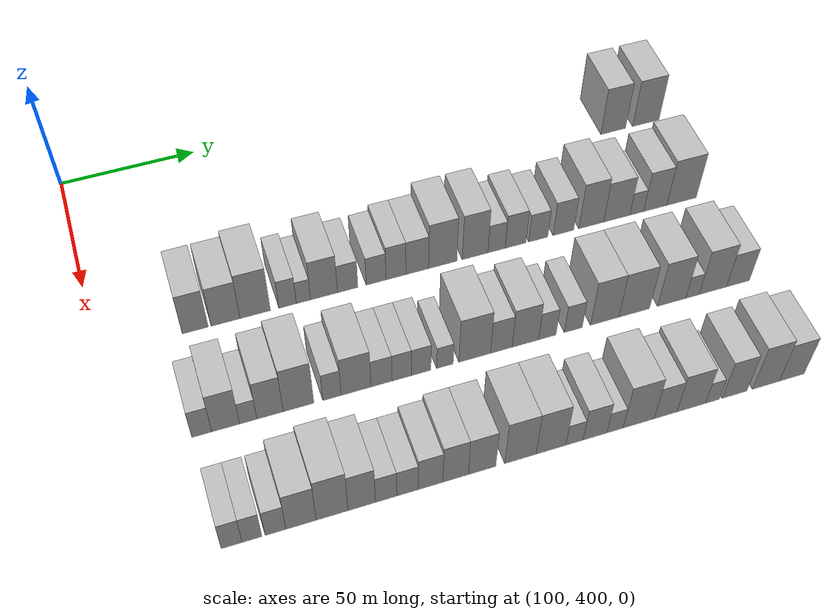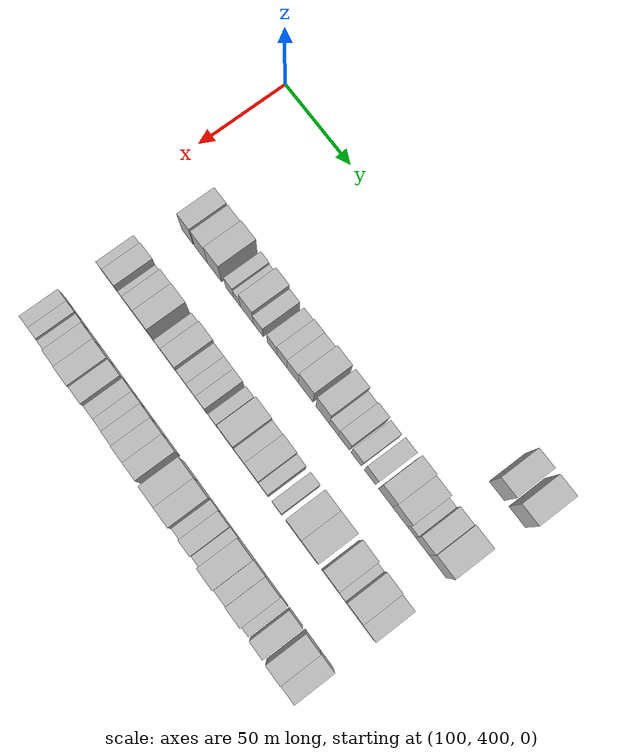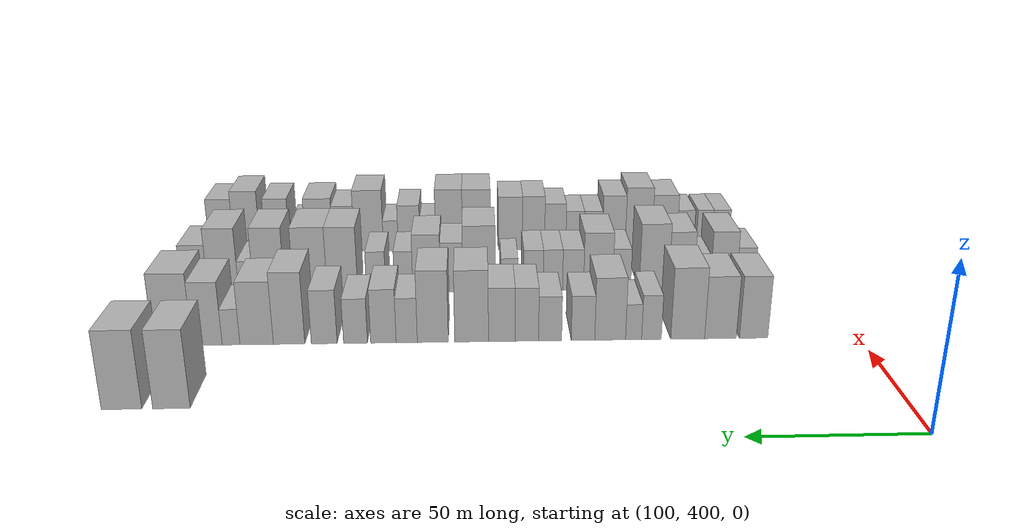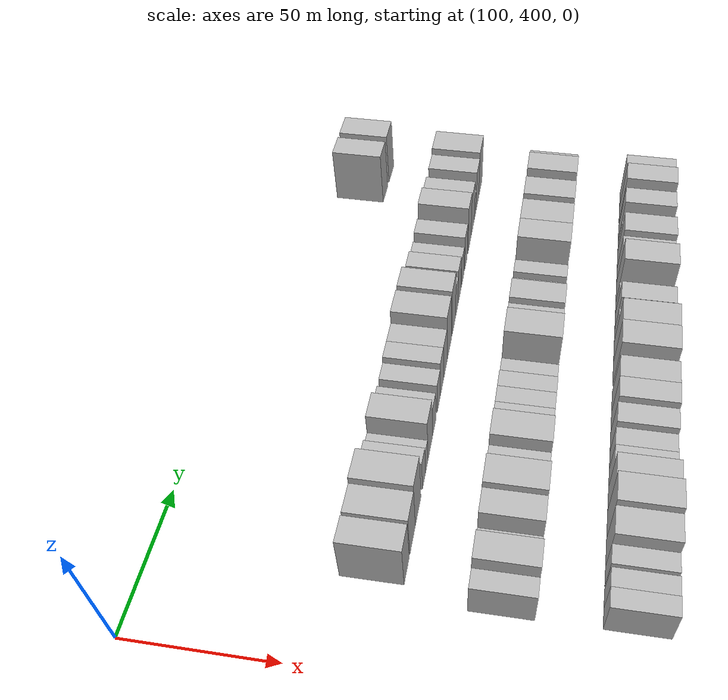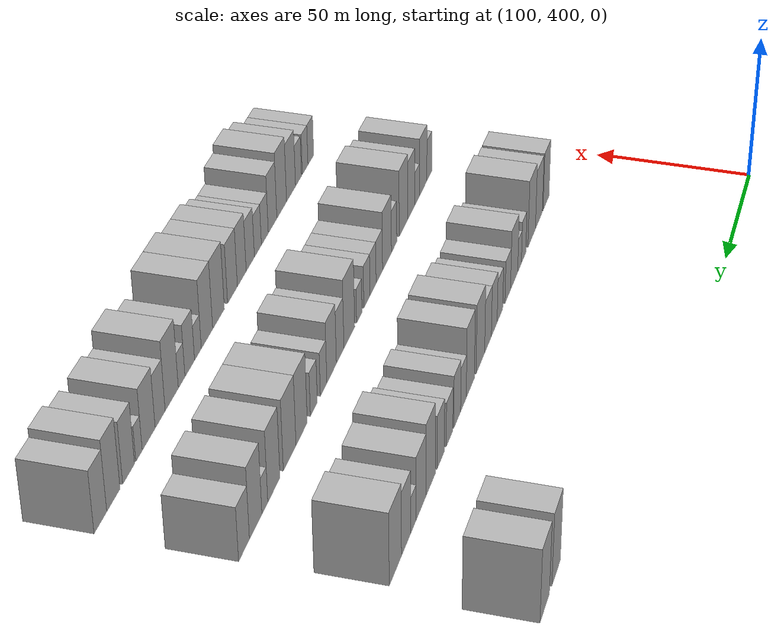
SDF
<sdf version="1.6">
 <world name="default">
  <model name="building_421">
   <static>1</static>
   <pose>130.0000 605.0881 0 0.000000 0.000000 0.000000</pose>
   <link name="link">
    <pose>0 0 12.00 0 0 0</pose>
    <collision name="collision"><geometry><box><size>20.0000 10.2831 24.0000</size></box></geometry></collision>
    <visual name="visual">
     <cast_shadows>0</cast_shadows>
     <geometry><box><size>20.0000 10.2831 24.0000</size></box></geometry>
     <material>
      <script>
       <uri>model://HANNAS_wall/materials/scripts</uri>
       <uri>model://HANNAS_wall/materials/textures</uri>
       <name>vrc/HANNAS_wall</name>
      </script>
     </material>
    </visual>
   </link>
  </model>
  <model name="building_422">
   <static>1</static>
   <pose>130.0000 618.7849 0 0.000000 0.000000 0.000000</pose>
   <link name="link">
    <pose>0 0 12.00 0 0 0</pose>
    <collision name="collision"><geometry><box><size>20.0000 11.1104 24.0000</size></box></geometry></collision>
    <visual name="visual">
     <cast_shadows>0</cast_shadows>
     <geometry><box><size>20.0000 11.1104 24.0000</size></box></geometry>
     <material>
      <script>
       <uri>model://HANNAS_wall/materials/scripts</uri>
       <uri>model://HANNAS_wall/materials/textures</uri>
       <name>vrc/HANNAS_wall</name>
      </script>
     </material>
    </visual>
   </link>
  </model>
  <model name="building_532">
   <static>1</static>
   <pose>170.0000 433.3352 0 0.000000 0.000000 0.000000</pose>
   <link name="link">
    <pose>0 0 10.50 0 0 0</pose>
    <collision name="collision"><geometry><box><size>20.0000 8.9717 21.0000</size></box></geometry></collision>
    <visual name="visual">
     <cast_shadows>0</cast_shadows>
     <geometry><box><size>20.0000 8.9717 21.0000</size></box></geometry>
     <material>
      <script>
       <uri>model://HANNAS_wall/materials/scripts</uri>
       <uri>model://HANNAS_wall/materials/textures</uri>
       <name>vrc/HANNAS_wall</name>
      </script>
     </material>
    </visual>
   </link>
  </model>
  <model name="building_533">
   <static>1</static>
   <pose>170.0000 443.8357 0 0.000000 0.000000 0.000000</pose>
   <link name="link">
    <pose>0 0 10.50 0 0 0</pose>
    <collision name="collision"><geometry><box><size>20.0000 10.0292 21.0000</size></box></geometry></collision>
    <visual name="visual">
     <cast_shadows>0</cast_shadows>
     <geometry><box><size>20.0000 10.0292 21.0000</size></box></geometry>
     <material>
      <script>
       <uri>model://HANNAS_wall/materials/scripts</uri>
       <uri>model://HANNAS_wall/materials/textures</uri>
       <name>vrc/HANNAS_wall</name>
      </script>
     </material>
    </visual>
   </link>
  </model>
  <model name="building_534">
   <static>1</static>
   <pose>170.0000 454.1911 0 0.000000 0.000000 0.000000</pose>
   <link name="link">
    <pose>0 0 12.00 0 0 0</pose>
    <collision name="collision"><geometry><box><size>20.0000 10.6815 24.0000</size></box></geometry></collision>
    <visual name="visual">
     <cast_shadows>0</cast_shadows>
     <geometry><box><size>20.0000 10.6815 24.0000</size></box></geometry>
     <material>
      <script>
       <uri>model://HANNAS_wall/materials/scripts</uri>
       <uri>model://HANNAS_wall/materials/textures</uri>
       <name>vrc/HANNAS_wall</name>
      </script>
     </material>
    </visual>
   </link>
  </model>
  <model name="building_535">
   <static>1</static>
   <pose>170.0000 465.6316 0 0.000000 0.000000 0.000000</pose>
   <link name="link">
    <pose>0 0 7.50 0 0 0</pose>
    <collision name="collision"><geometry><box><size>20.0000 6.1996 15.0000</size></box></geometry></collision>
    <visual name="visual">
     <cast_shadows>0</cast_shadows>
     <geometry><box><size>20.0000 6.1996 15.0000</size></box></geometry>
     <material>
      <script>
       <uri>model://HANNAS_wall/materials/scripts</uri>
       <uri>model://HANNAS_wall/materials/textures</uri>
       <name>vrc/HANNAS_wall</name>
      </script>
     </material>
    </visual>
   </link>
  </model>
  <model name="building_536">
   <static>1</static>
   <pose>170.0000 471.2588 0 0.000000 0.000000 0.000000</pose>
   <link name="link">
    <pose>0 0 6.00 0 0 0</pose>
    <collision name="collision"><geometry><box><size>20.0000 5.0548 12.0000</size></box></geometry></collision>
    <visual name="visual">
     <cast_shadows>0</cast_shadows>
     <geometry><box><size>20.0000 5.0548 12.0000</size></box></geometry>
     <material>
      <script>
       <uri>model://HANNAS_wall/materials/scripts</uri>
       <uri>model://HANNAS_wall/materials/textures</uri>
       <name>vrc/HANNAS_wall</name>
      </script>
     </material>
    </visual>
   </link>
  </model>
  <model name="building_537">
   <static>1</static>
   <pose>170.0000 478.6323 0 0.000000 0.000000 0.000000</pose>
   <link name="link">
    <pose>0 0 10.50 0 0 0</pose>
    <collision name="collision"><geometry><box><size>20.0000 9.6921 21.0000</size></box></geometry></collision>
    <visual name="visual">
     <cast_shadows>0</cast_shadows>
     <geometry><box><size>20.0000 9.6921 21.0000</size></box></geometry>
     <material>
      <script>
       <uri>model://HANNAS_wall/materials/scripts</uri>
       <uri>model://HANNAS_wall/materials/textures</uri>
       <name>vrc/HANNAS_wall</name>
      </script>
     </material>
    </visual>
   </link>
  </model>
  <model name="building_538">
   <static>1</static>
   <pose>170.0000 487.1583 0 0.000000 0.000000 0.000000</pose>
   <link name="link">
    <pose>0 0 7.50 0 0 0</pose>
    <collision name="collision"><geometry><box><size>20.0000 7.3598 15.0000</size></box></geometry></collision>
    <visual name="visual">
     <cast_shadows>0</cast_shadows>
     <geometry><box><size>20.0000 7.3598 15.0000</size></box></geometry>
     <material>
      <script>
       <uri>model://HANNAS_wall/materials/scripts</uri>
       <uri>model://HANNAS_wall/materials/textures</uri>
       <name>vrc/HANNAS_wall</name>
      </script>
     </material>
    </visual>
   </link>
  </model>
  <model name="building_539">
   <static>1</static>
   <pose>170.0000 497.4530 0 0.000000 0.000000 0.000000</pose>
   <link name="link">
    <pose>0 0 7.50 0 0 0</pose>
    <collision name="collision"><geometry><box><size>20.0000 7.2296 15.0000</size></box></geometry></collision>
    <visual name="visual">
     <cast_shadows>0</cast_shadows>
     <geometry><box><size>20.0000 7.2296 15.0000</size></box></geometry>
     <material>
      <script>
       <uri>model://HANNAS_wall/materials/scripts</uri>
       <uri>model://HANNAS_wall/materials/textures</uri>
       <name>vrc/HANNAS_wall</name>
      </script>
     </material>
    </visual>
   </link>
  </model>
  <model name="building_540">
   <static>1</static>
   <pose>170.0000 504.7379 0 0.000000 0.000000 0.000000</pose>
   <link name="link">
    <pose>0 0 9.00 0 0 0</pose>
    <collision name="collision"><geometry><box><size>20.0000 7.3401 18.0000</size></box></geometry></collision>
    <visual name="visual">
     <cast_shadows>0</cast_shadows>
     <geometry><box><size>20.0000 7.3401 18.0000</size></box></geometry>
     <material>
      <script>
       <uri>model://HANNAS_wall/materials/scripts</uri>
       <uri>model://HANNAS_wall/materials/textures</uri>
       <name>vrc/HANNAS_wall</name>
      </script>
     </material>
    </visual>
   </link>
  </model>
  <model name="building_541">
   <static>1</static>
   <pose>170.0000 512.5933 0 0.000000 0.000000 0.000000</pose>
   <link name="link">
    <pose>0 0 9.00 0 0 0</pose>
    <collision name="collision"><geometry><box><size>20.0000 8.3707 18.0000</size></box></geometry></collision>
    <visual name="visual">
     <cast_shadows>0</cast_shadows>
     <geometry><box><size>20.0000 8.3707 18.0000</size></box></geometry>
     <material>
      <script>
       <uri>model://HANNAS_wall/materials/scripts</uri>
       <uri>model://HANNAS_wall/materials/textures</uri>
       <name>vrc/HANNAS_wall</name>
      </script>
     </material>
    </visual>
   </link>
  </model>
  <model name="building_542">
   <static>1</static>
   <pose>170.0000 522.0452 0 0.000000 0.000000 0.000000</pose>
   <link name="link">
    <pose>0 0 12.00 0 0 0</pose>
    <collision name="collision"><geometry><box><size>20.0000 10.5331 24.0000</size></box></geometry></collision>
    <visual name="visual">
     <cast_shadows>0</cast_shadows>
     <geometry><box><size>20.0000 10.5331 24.0000</size></box></geometry>
     <material>
      <script>
       <uri>model://HANNAS_wall/materials/scripts</uri>
       <uri>model://HANNAS_wall/materials/textures</uri>
       <name>vrc/HANNAS_wall</name>
      </script>
     </material>
    </visual>
   </link>
  </model>
  <model name="building_543">
   <static>1</static>
   <pose>170.0000 534.1423 0 0.000000 0.000000 0.000000</pose>
   <link name="link">
    <pose>0 0 12.00 0 0 0</pose>
    <collision name="collision"><geometry><box><size>20.0000 9.6612 24.0000</size></box></geometry></collision>
    <visual name="visual">
     <cast_shadows>0</cast_shadows>
     <geometry><box><size>20.0000 9.6612 24.0000</size></box></geometry>
     <material>
      <script>
       <uri>model://HANNAS_wall/materials/scripts</uri>
       <uri>model://HANNAS_wall/materials/textures</uri>
       <name>vrc/HANNAS_wall</name>
      </script>
     </material>
    </visual>
   </link>
  </model>
  <model name="building_544">
   <static>1</static>
   <pose>170.0000 542.2702 0 0.000000 0.000000 0.000000</pose>
   <link name="link">
    <pose>0 0 7.50 0 0 0</pose>
    <collision name="collision"><geometry><box><size>20.0000 6.5946 15.0000</size></box></geometry></collision>
    <visual name="visual">
     <cast_shadows>0</cast_shadows>
     <geometry><box><size>20.0000 6.5946 15.0000</size></box></geometry>
     <material>
      <script>
       <uri>model://HANNAS_wall/materials/scripts</uri>
       <uri>model://HANNAS_wall/materials/textures</uri>
       <name>vrc/HANNAS_wall</name>
      </script>
     </material>
    </visual>
   </link>
  </model>
  <model name="building_545">
   <static>1</static>
   <pose>170.0000 549.5202 0 0.000000 0.000000 0.000000</pose>
   <link name="link">
    <pose>0 0 9.00 0 0 0</pose>
    <collision name="collision"><geometry><box><size>20.0000 7.9053 18.0000</size></box></geometry></collision>
    <visual name="visual">
     <cast_shadows>0</cast_shadows>
     <geometry><box><size>20.0000 7.9053 18.0000</size></box></geometry>
     <material>
      <script>
       <uri>model://HANNAS_wall/materials/scripts</uri>
       <uri>model://HANNAS_wall/materials/textures</uri>
       <name>vrc/HANNAS_wall</name>
      </script>
     </material>
    </visual>
   </link>
  </model>
  <model name="building_546">
   <static>1</static>
   <pose>170.0000 558.1807 0 0.000000 0.000000 0.000000</pose>
   <link name="link">
    <pose>0 0 7.50 0 0 0</pose>
    <collision name="collision"><geometry><box><size>20.0000 7.4158 15.0000</size></box></geometry></collision>
    <visual name="visual">
     <cast_shadows>0</cast_shadows>
     <geometry><box><size>20.0000 7.4158 15.0000</size></box></geometry>
     <material>
      <script>
       <uri>model://HANNAS_wall/materials/scripts</uri>
       <uri>model://HANNAS_wall/materials/textures</uri>
       <name>vrc/HANNAS_wall</name>
      </script>
     </material>
    </visual>
   </link>
  </model>
  <model name="building_547">
   <static>1</static>
   <pose>170.0000 567.8969 0 0.000000 0.000000 0.000000</pose>
   <link name="link">
    <pose>0 0 9.00 0 0 0</pose>
    <collision name="collision"><geometry><box><size>20.0000 8.0165 18.0000</size></box></geometry></collision>
    <visual name="visual">
     <cast_shadows>0</cast_shadows>
     <geometry><box><size>20.0000 8.0165 18.0000</size></box></geometry>
     <material>
      <script>
       <uri>model://HANNAS_wall/materials/scripts</uri>
       <uri>model://HANNAS_wall/materials/textures</uri>
       <name>vrc/HANNAS_wall</name>
      </script>
     </material>
    </visual>
   </link>
  </model>
  <model name="building_548">
   <static>1</static>
   <pose>170.0000 578.7723 0 0.000000 0.000000 0.000000</pose>
   <link name="link">
    <pose>0 0 12.00 0 0 0</pose>
    <collision name="collision"><geometry><box><size>20.0000 9.7342 24.0000</size></box></geometry></collision>
    <visual name="visual">
     <cast_shadows>0</cast_shadows>
     <geometry><box><size>20.0000 9.7342 24.0000</size></box></geometry>
     <material>
      <script>
       <uri>model://HANNAS_wall/materials/scripts</uri>
       <uri>model://HANNAS_wall/materials/textures</uri>
       <name>vrc/HANNAS_wall</name>
      </script>
     </material>
    </visual>
   </link>
  </model>
  <model name="building_549">
   <static>1</static>
   <pose>170.0000 588.8081 0 0.000000 0.000000 0.000000</pose>
   <link name="link">
    <pose>0 0 10.50 0 0 0</pose>
    <collision name="collision"><geometry><box><size>20.0000 10.3373 21.0000</size></box></geometry></collision>
    <visual name="visual">
     <cast_shadows>0</cast_shadows>
     <geometry><box><size>20.0000 10.3373 21.0000</size></box></geometry>
     <material>
      <script>
       <uri>model://HANNAS_wall/materials/scripts</uri>
       <uri>model://HANNAS_wall/materials/textures</uri>
       <name>vrc/HANNAS_wall</name>
      </script>
     </material>
    </visual>
   </link>
  </model>
  <model name="building_550">
   <static>1</static>
   <pose>170.0000 596.7109 0 0.000000 0.000000 0.000000</pose>
   <link name="link">
    <pose>0 0 6.00 0 0 0</pose>
    <collision name="collision"><geometry><box><size>20.0000 5.4684 12.0000</size></box></geometry></collision>
    <visual name="visual">
     <cast_shadows>0</cast_shadows>
     <geometry><box><size>20.0000 5.4684 12.0000</size></box></geometry>
     <material>
      <script>
       <uri>model://HANNAS_wall/materials/scripts</uri>
       <uri>model://HANNAS_wall/materials/textures</uri>
       <name>vrc/HANNAS_wall</name>
      </script>
     </material>
    </visual>
   </link>
  </model>
  <model name="building_551">
   <static>1</static>
   <pose>170.0000 604.0701 0 0.000000 0.000000 0.000000</pose>
   <link name="link">
    <pose>0 0 10.50 0 0 0</pose>
    <collision name="collision"><geometry><box><size>20.0000 9.2498 21.0000</size></box></geometry></collision>
    <visual name="visual">
     <cast_shadows>0</cast_shadows>
     <geometry><box><size>20.0000 9.2498 21.0000</size></box></geometry>
     <material>
      <script>
       <uri>model://HANNAS_wall/materials/scripts</uri>
       <uri>model://HANNAS_wall/materials/textures</uri>
       <name>vrc/HANNAS_wall</name>
      </script>
     </material>
    </visual>
   </link>
  </model>
  <model name="building_552">
   <static>1</static>
   <pose>170.0000 614.6300 0 0.000000 0.000000 0.000000</pose>
   <link name="link">
    <pose>0 0 12.00 0 0 0</pose>
    <collision name="collision"><geometry><box><size>20.0000 11.8701 24.0000</size></box></geometry></collision>
    <visual name="visual">
     <cast_shadows>0</cast_shadows>
     <geometry><box><size>20.0000 11.8701 24.0000</size></box></geometry>
     <material>
      <script>
       <uri>model://HANNAS_wall/materials/scripts</uri>
       <uri>model://HANNAS_wall/materials/textures</uri>
       <name>vrc/HANNAS_wall</name>
      </script>
     </material>
    </visual>
   </link>
  </model>
  <model name="building_666">
   <static>1</static>
   <pose>210.0000 426.7360 0 0.000000 0.000000 0.000000</pose>
   <link name="link">
    <pose>0 0 7.50 0 0 0</pose>
    <collision name="collision"><geometry><box><size>20.0000 6.4606 15.0000</size></box></geometry></collision>
    <visual name="visual">
     <cast_shadows>0</cast_shadows>
     <geometry><box><size>20.0000 6.4606 15.0000</size></box></geometry>
     <material>
      <script>
       <uri>model://HANNAS_wall/materials/scripts</uri>
       <uri>model://HANNAS_wall/materials/textures</uri>
       <name>vrc/HANNAS_wall</name>
      </script>
     </material>
    </visual>
   </link>
  </model>
  <model name="building_667">
   <static>1</static>
   <pose>210.0000 434.5325 0 0.000000 0.000000 0.000000</pose>
   <link name="link">
    <pose>0 0 10.50 0 0 0</pose>
    <collision name="collision"><geometry><box><size>20.0000 9.1324 21.0000</size></box></geometry></collision>
    <visual name="visual">
     <cast_shadows>0</cast_shadows>
     <geometry><box><size>20.0000 9.1324 21.0000</size></box></geometry>
     <material>
      <script>
       <uri>model://HANNAS_wall/materials/scripts</uri>
       <uri>model://HANNAS_wall/materials/textures</uri>
       <name>vrc/HANNAS_wall</name>
      </script>
     </material>
    </visual>
   </link>
  </model>
  <model name="building_668">
   <static>1</static>
   <pose>210.0000 441.9492 0 0.000000 0.000000 0.000000</pose>
   <link name="link">
    <pose>0 0 6.00 0 0 0</pose>
    <collision name="collision"><geometry><box><size>20.0000 5.7009 12.0000</size></box></geometry></collision>
    <visual name="visual">
     <cast_shadows>0</cast_shadows>
     <geometry><box><size>20.0000 5.7009 12.0000</size></box></geometry>
     <material>
      <script>
       <uri>model://HANNAS_wall/materials/scripts</uri>
       <uri>model://HANNAS_wall/materials/textures</uri>
       <name>vrc/HANNAS_wall</name>
      </script>
     </material>
    </visual>
   </link>
  </model>
  <model name="building_669">
   <static>1</static>
   <pose>210.0000 449.1795 0 0.000000 0.000000 0.000000</pose>
   <link name="link">
    <pose>0 0 10.50 0 0 0</pose>
    <collision name="collision"><geometry><box><size>20.0000 8.7599 21.0000</size></box></geometry></collision>
    <visual name="visual">
     <cast_shadows>0</cast_shadows>
     <geometry><box><size>20.0000 8.7599 21.0000</size></box></geometry>
     <material>
      <script>
       <uri>model://HANNAS_wall/materials/scripts</uri>
       <uri>model://HANNAS_wall/materials/textures</uri>
       <name>vrc/HANNAS_wall</name>
      </script>
     </material>
    </visual>
   </link>
  </model>
  <model name="building_670">
   <static>1</static>
   <pose>210.0000 458.6980 0 0.000000 0.000000 0.000000</pose>
   <link name="link">
    <pose>0 0 12.00 0 0 0</pose>
    <collision name="collision"><geometry><box><size>20.0000 10.2771 24.0000</size></box></geometry></collision>
    <visual name="visual">
     <cast_shadows>0</cast_shadows>
     <geometry><box><size>20.0000 10.2771 24.0000</size></box></geometry>
     <material>
      <script>
       <uri>model://HANNAS_wall/materials/scripts</uri>
       <uri>model://HANNAS_wall/materials/textures</uri>
       <name>vrc/HANNAS_wall</name>
      </script>
     </material>
    </visual>
   </link>
  </model>
  <model name="building_671">
   <static>1</static>
   <pose>210.0000 469.9481 0 0.000000 0.000000 0.000000</pose>
   <link name="link">
    <pose>0 0 7.50 0 0 0</pose>
    <collision name="collision"><geometry><box><size>20.0000 6.2230 15.0000</size></box></geometry></collision>
    <visual name="visual">
     <cast_shadows>0</cast_shadows>
     <geometry><box><size>20.0000 6.2230 15.0000</size></box></geometry>
     <material>
      <script>
       <uri>model://HANNAS_wall/materials/scripts</uri>
       <uri>model://HANNAS_wall/materials/textures</uri>
       <name>vrc/HANNAS_wall</name>
      </script>
     </material>
    </visual>
   </link>
  </model>
  <model name="building_672">
   <static>1</static>
   <pose>210.0000 478.1426 0 0.000000 0.000000 0.000000</pose>
   <link name="link">
    <pose>0 0 10.50 0 0 0</pose>
    <collision name="collision"><geometry><box><size>20.0000 10.1661 21.0000</size></box></geometry></collision>
    <visual name="visual">
     <cast_shadows>0</cast_shadows>
     <geometry><box><size>20.0000 10.1661 21.0000</size></box></geometry>
     <material>
      <script>
       <uri>model://HANNAS_wall/materials/scripts</uri>
       <uri>model://HANNAS_wall/materials/textures</uri>
       <name>vrc/HANNAS_wall</name>
      </script>
     </material>
    </visual>
   </link>
  </model>
  <model name="building_673">
   <static>1</static>
   <pose>210.0000 486.8708 0 0.000000 0.000000 0.000000</pose>
   <link name="link">
    <pose>0 0 7.50 0 0 0</pose>
    <collision name="collision"><geometry><box><size>20.0000 7.2904 15.0000</size></box></geometry></collision>
    <visual name="visual">
     <cast_shadows>0</cast_shadows>
     <geometry><box><size>20.0000 7.2904 15.0000</size></box></geometry>
     <material>
      <script>
       <uri>model://HANNAS_wall/materials/scripts</uri>
       <uri>model://HANNAS_wall/materials/textures</uri>
       <name>vrc/HANNAS_wall</name>
      </script>
     </material>
    </visual>
   </link>
  </model>
  <model name="building_674">
   <static>1</static>
   <pose>210.0000 493.8642 0 0.000000 0.000000 0.000000</pose>
   <link name="link">
    <pose>0 0 7.50 0 0 0</pose>
    <collision name="collision"><geometry><box><size>20.0000 6.6965 15.0000</size></box></geometry></collision>
    <visual name="visual">
     <cast_shadows>0</cast_shadows>
     <geometry><box><size>20.0000 6.6965 15.0000</size></box></geometry>
     <material>
      <script>
       <uri>model://HANNAS_wall/materials/scripts</uri>
       <uri>model://HANNAS_wall/materials/textures</uri>
       <name>vrc/HANNAS_wall</name>
      </script>
     </material>
    </visual>
   </link>
  </model>
  <model name="building_675">
   <static>1</static>
   <pose>210.0000 500.6043 0 0.000000 0.000000 0.000000</pose>
   <link name="link">
    <pose>0 0 7.50 0 0 0</pose>
    <collision name="collision"><geometry><box><size>20.0000 6.7836 15.0000</size></box></geometry></collision>
    <visual name="visual">
     <cast_shadows>0</cast_shadows>
     <geometry><box><size>20.0000 6.7836 15.0000</size></box></geometry>
     <material>
      <script>
       <uri>model://HANNAS_wall/materials/scripts</uri>
       <uri>model://HANNAS_wall/materials/textures</uri>
       <name>vrc/HANNAS_wall</name>
      </script>
     </material>
    </visual>
   </link>
  </model>
  <model name="building_676">
   <static>1</static>
   <pose>210.0000 508.9045 0 0.000000 0.000000 0.000000</pose>
   <link name="link">
    <pose>0 0 6.00 0 0 0</pose>
    <collision name="collision"><geometry><box><size>20.0000 5.8169 12.0000</size></box></geometry></collision>
    <visual name="visual">
     <cast_shadows>0</cast_shadows>
     <geometry><box><size>20.0000 5.8169 12.0000</size></box></geometry>
     <material>
      <script>
       <uri>model://HANNAS_wall/materials/scripts</uri>
       <uri>model://HANNAS_wall/materials/textures</uri>
       <name>vrc/HANNAS_wall</name>
      </script>
     </material>
    </visual>
   </link>
  </model>
  <model name="building_677">
   <static>1</static>
   <pose>210.0000 519.4240 0 0.000000 0.000000 0.000000</pose>
   <link name="link">
    <pose>0 0 12.00 0 0 0</pose>
    <collision name="collision"><geometry><box><size>20.0000 11.2221 24.0000</size></box></geometry></collision>
    <visual name="visual">
     <cast_shadows>0</cast_shadows>
     <geometry><box><size>20.0000 11.2221 24.0000</size></box></geometry>
     <material>
      <script>
       <uri>model://HANNAS_wall/materials/scripts</uri>
       <uri>model://HANNAS_wall/materials/textures</uri>
       <name>vrc/HANNAS_wall</name>
      </script>
     </material>
    </visual>
   </link>
  </model>
  <model name="building_678">
   <static>1</static>
   <pose>210.0000 528.8953 0 0.000000 0.000000 0.000000</pose>
   <link name="link">
    <pose>0 0 9.00 0 0 0</pose>
    <collision name="collision"><geometry><box><size>20.0000 7.7204 18.0000</size></box></geometry></collision>
    <visual name="visual">
     <cast_shadows>0</cast_shadows>
     <geometry><box><size>20.0000 7.7204 18.0000</size></box></geometry>
     <material>
      <script>
       <uri>model://HANNAS_wall/materials/scripts</uri>
       <uri>model://HANNAS_wall/materials/textures</uri>
       <name>vrc/HANNAS_wall</name>
      </script>
     </material>
    </visual>
   </link>
  </model>
  <model name="building_679">
   <static>1</static>
   <pose>210.0000 537.5340 0 0.000000 0.000000 0.000000</pose>
   <link name="link">
    <pose>0 0 10.50 0 0 0</pose>
    <collision name="collision"><geometry><box><size>20.0000 9.5571 21.0000</size></box></geometry></collision>
    <visual name="visual">
     <cast_shadows>0</cast_shadows>
     <geometry><box><size>20.0000 9.5571 21.0000</size></box></geometry>
     <material>
      <script>
       <uri>model://HANNAS_wall/materials/scripts</uri>
       <uri>model://HANNAS_wall/materials/textures</uri>
       <name>vrc/HANNAS_wall</name>
      </script>
     </material>
    </visual>
   </link>
  </model>
  <model name="building_680">
   <static>1</static>
   <pose>210.0000 545.4736 0 0.000000 0.000000 0.000000</pose>
   <link name="link">
    <pose>0 0 7.50 0 0 0</pose>
    <collision name="collision"><geometry><box><size>20.0000 6.3221 15.0000</size></box></geometry></collision>
    <visual name="visual">
     <cast_shadows>0</cast_shadows>
     <geometry><box><size>20.0000 6.3221 15.0000</size></box></geometry>
     <material>
      <script>
       <uri>model://HANNAS_wall/materials/scripts</uri>
       <uri>model://HANNAS_wall/materials/textures</uri>
       <name>vrc/HANNAS_wall</name>
      </script>
     </material>
    </visual>
   </link>
  </model>
  <model name="building_681">
   <static>1</static>
   <pose>210.0000 554.9462 0 0.000000 0.000000 0.000000</pose>
   <link name="link">
    <pose>0 0 7.50 0 0 0</pose>
    <collision name="collision"><geometry><box><size>20.0000 6.6231 15.0000</size></box></geometry></collision>
    <visual name="visual">
     <cast_shadows>0</cast_shadows>
     <geometry><box><size>20.0000 6.6231 15.0000</size></box></geometry>
     <material>
      <script>
       <uri>model://HANNAS_wall/materials/scripts</uri>
       <uri>model://HANNAS_wall/materials/textures</uri>
       <name>vrc/HANNAS_wall</name>
      </script>
     </material>
    </visual>
   </link>
  </model>
  <model name="building_682">
   <static>1</static>
   <pose>210.0000 566.5141 0 0.000000 0.000000 0.000000</pose>
   <link name="link">
    <pose>0 0 12.00 0 0 0</pose>
    <collision name="collision"><geometry><box><size>20.0000 10.5127 24.0000</size></box></geometry></collision>
    <visual name="visual">
     <cast_shadows>0</cast_shadows>
     <geometry><box><size>20.0000 10.5127 24.0000</size></box></geometry>
     <material>
      <script>
       <uri>model://HANNAS_wall/materials/scripts</uri>
       <uri>model://HANNAS_wall/materials/textures</uri>
       <name>vrc/HANNAS_wall</name>
      </script>
     </material>
    </visual>
   </link>
  </model>
  <model name="building_683">
   <static>1</static>
   <pose>210.0000 577.5117 0 0.000000 0.000000 0.000000</pose>
   <link name="link">
    <pose>0 0 12.00 0 0 0</pose>
    <collision name="collision"><geometry><box><size>20.0000 11.4823 24.0000</size></box></geometry></collision>
    <visual name="visual">
     <cast_shadows>0</cast_shadows>
     <geometry><box><size>20.0000 11.4823 24.0000</size></box></geometry>
     <material>
      <script>
       <uri>model://HANNAS_wall/materials/scripts</uri>
       <uri>model://HANNAS_wall/materials/textures</uri>
       <name>vrc/HANNAS_wall</name>
      </script>
     </material>
    </visual>
   </link>
  </model>
  <model name="building_684">
   <static>1</static>
   <pose>210.0000 591.5973 0 0.000000 0.000000 0.000000</pose>
   <link name="link">
    <pose>0 0 12.00 0 0 0</pose>
    <collision name="collision"><geometry><box><size>20.0000 10.6889 24.0000</size></box></geometry></collision>
    <visual name="visual">
     <cast_shadows>0</cast_shadows>
     <geometry><box><size>20.0000 10.6889 24.0000</size></box></geometry>
     <material>
      <script>
       <uri>model://HANNAS_wall/materials/scripts</uri>
       <uri>model://HANNAS_wall/materials/textures</uri>
       <name>vrc/HANNAS_wall</name>
      </script>
     </material>
    </visual>
   </link>
  </model>
  <model name="building_685">
   <static>1</static>
   <pose>210.0000 599.4747 0 0.000000 0.000000 0.000000</pose>
   <link name="link">
    <pose>0 0 6.00 0 0 0</pose>
    <collision name="collision"><geometry><box><size>20.0000 5.0660 12.0000</size></box></geometry></collision>
    <visual name="visual">
     <cast_shadows>0</cast_shadows>
     <geometry><box><size>20.0000 5.0660 12.0000</size></box></geometry>
     <material>
      <script>
       <uri>model://HANNAS_wall/materials/scripts</uri>
       <uri>model://HANNAS_wall/materials/textures</uri>
       <name>vrc/HANNAS_wall</name>
      </script>
     </material>
    </visual>
   </link>
  </model>
  <model name="building_686">
   <static>1</static>
   <pose>210.0000 607.2509 0 0.000000 0.000000 0.000000</pose>
   <link name="link">
    <pose>0 0 12.00 0 0 0</pose>
    <collision name="collision"><geometry><box><size>20.0000 10.4862 24.0000</size></box></geometry></collision>
    <visual name="visual">
     <cast_shadows>0</cast_shadows>
     <geometry><box><size>20.0000 10.4862 24.0000</size></box></geometry>
     <material>
      <script>
       <uri>model://HANNAS_wall/materials/scripts</uri>
       <uri>model://HANNAS_wall/materials/textures</uri>
       <name>vrc/HANNAS_wall</name>
      </script>
     </material>
    </visual>
   </link>
  </model>
  <model name="building_687">
   <static>1</static>
   <pose>210.0000 616.9603 0 0.000000 0.000000 0.000000</pose>
   <link name="link">
    <pose>0 0 9.00 0 0 0</pose>
    <collision name="collision"><geometry><box><size>20.0000 8.9327 18.0000</size></box></geometry></collision>
    <visual name="visual">
     <cast_shadows>0</cast_shadows>
     <geometry><box><size>20.0000 8.9327 18.0000</size></box></geometry>
     <material>
      <script>
       <uri>model://HANNAS_wall/materials/scripts</uri>
       <uri>model://HANNAS_wall/materials/textures</uri>
       <name>vrc/HANNAS_wall</name>
      </script>
     </material>
    </visual>
   </link>
  </model>
  <model name="building_798">
   <static>1</static>
   <pose>250.0000 427.0473 0 0.000000 0.000000 0.000000</pose>
   <link name="link">
    <pose>0 0 7.50 0 0 0</pose>
    <collision name="collision"><geometry><box><size>20.0000 6.4147 15.0000</size></box></geometry></collision>
    <visual name="visual">
     <cast_shadows>0</cast_shadows>
     <geometry><box><size>20.0000 6.4147 15.0000</size></box></geometry>
     <material>
      <script>
       <uri>model://HANNAS_wall/materials/scripts</uri>
       <uri>model://HANNAS_wall/materials/textures</uri>
       <name>vrc/HANNAS_wall</name>
      </script>
     </material>
    </visual>
   </link>
  </model>
  <model name="building_799">
   <static>1</static>
   <pose>250.0000 433.3281 0 0.000000 0.000000 0.000000</pose>
   <link name="link">
    <pose>0 0 7.50 0 0 0</pose>
    <collision name="collision"><geometry><box><size>20.0000 6.1469 15.0000</size></box></geometry></collision>
    <visual name="visual">
     <cast_shadows>0</cast_shadows>
     <geometry><box><size>20.0000 6.1469 15.0000</size></box></geometry>
     <material>
      <script>
       <uri>model://HANNAS_wall/materials/scripts</uri>
       <uri>model://HANNAS_wall/materials/textures</uri>
       <name>vrc/HANNAS_wall</name>
      </script>
     </material>
    </visual>
   </link>
  </model>
  <model name="building_800">
   <static>1</static>
   <pose>250.0000 440.6244 0 0.000000 0.000000 0.000000</pose>
   <link name="link">
    <pose>0 0 7.50 0 0 0</pose>
    <collision name="collision"><geometry><box><size>20.0000 6.4456 15.0000</size></box></geometry></collision>
    <visual name="visual">
     <cast_shadows>0</cast_shadows>
     <geometry><box><size>20.0000 6.4456 15.0000</size></box></geometry>
     <material>
      <script>
       <uri>model://HANNAS_wall/materials/scripts</uri>
       <uri>model://HANNAS_wall/materials/textures</uri>
       <name>vrc/HANNAS_wall</name>
      </script>
     </material>
    </visual>
   </link>
  </model>
  <model name="building_801">
   <static>1</static>
   <pose>250.0000 448.6291 0 0.000000 0.000000 0.000000</pose>
   <link name="link">
    <pose>0 0 10.50 0 0 0</pose>
    <collision name="collision"><geometry><box><size>20.0000 9.5637 21.0000</size></box></geometry></collision>
    <visual name="visual">
     <cast_shadows>0</cast_shadows>
     <geometry><box><size>20.0000 9.5637 21.0000</size></box></geometry>
     <material>
      <script>
       <uri>model://HANNAS_wall/materials/scripts</uri>
       <uri>model://HANNAS_wall/materials/textures</uri>
       <name>vrc/HANNAS_wall</name>
      </script>
     </material>
    </visual>
   </link>
  </model>
  <model name="building_802">
   <static>1</static>
   <pose>250.0000 458.4852 0 0.000000 0.000000 0.000000</pose>
   <link name="link">
    <pose>0 0 12.00 0 0 0</pose>
    <collision name="collision"><geometry><box><size>20.0000 10.1486 24.0000</size></box></geometry></collision>
    <visual name="visual">
     <cast_shadows>0</cast_shadows>
     <geometry><box><size>20.0000 10.1486 24.0000</size></box></geometry>
     <material>
      <script>
       <uri>model://HANNAS_wall/materials/scripts</uri>
       <uri>model://HANNAS_wall/materials/textures</uri>
       <name>vrc/HANNAS_wall</name>
      </script>
     </material>
    </visual>
   </link>
  </model>
  <model name="building_803">
   <static>1</static>
   <pose>250.0000 467.9533 0 0.000000 0.000000 0.000000</pose>
   <link name="link">
    <pose>0 0 10.50 0 0 0</pose>
    <collision name="collision"><geometry><box><size>20.0000 8.7875 21.0000</size></box></geometry></collision>
    <visual name="visual">
     <cast_shadows>0</cast_shadows>
     <geometry><box><size>20.0000 8.7875 21.0000</size></box></geometry>
     <material>
      <script>
       <uri>model://HANNAS_wall/materials/scripts</uri>
       <uri>model://HANNAS_wall/materials/textures</uri>
       <name>vrc/HANNAS_wall</name>
      </script>
     </material>
    </visual>
   </link>
  </model>
  <model name="building_804">
   <static>1</static>
   <pose>250.0000 475.8177 0 0.000000 0.000000 0.000000</pose>
   <link name="link">
    <pose>0 0 7.50 0 0 0</pose>
    <collision name="collision"><geometry><box><size>20.0000 6.9413 15.0000</size></box></geometry></collision>
    <visual name="visual">
     <cast_shadows>0</cast_shadows>
     <geometry><box><size>20.0000 6.9413 15.0000</size></box></geometry>
     <material>
      <script>
       <uri>model://HANNAS_wall/materials/scripts</uri>
       <uri>model://HANNAS_wall/materials/textures</uri>
       <name>vrc/HANNAS_wall</name>
      </script>
     </material>
    </visual>
   </link>
  </model>
  <model name="building_805">
   <static>1</static>
   <pose>250.0000 482.7496 0 0.000000 0.000000 0.000000</pose>
   <link name="link">
    <pose>0 0 7.50 0 0 0</pose>
    <collision name="collision"><geometry><box><size>20.0000 6.9226 15.0000</size></box></geometry></collision>
    <visual name="visual">
     <cast_shadows>0</cast_shadows>
     <geometry><box><size>20.0000 6.9226 15.0000</size></box></geometry>
     <material>
      <script>
       <uri>model://HANNAS_wall/materials/scripts</uri>
       <uri>model://HANNAS_wall/materials/textures</uri>
       <name>vrc/HANNAS_wall</name>
      </script>
     </material>
    </visual>
   </link>
  </model>
  <model name="building_806">
   <static>1</static>
   <pose>250.0000 490.2266 0 0.000000 0.000000 0.000000</pose>
   <link name="link">
    <pose>0 0 9.00 0 0 0</pose>
    <collision name="collision"><geometry><box><size>20.0000 8.0313 18.0000</size></box></geometry></collision>
    <visual name="visual">
     <cast_shadows>0</cast_shadows>
     <geometry><box><size>20.0000 8.0313 18.0000</size></box></geometry>
     <material>
      <script>
       <uri>model://HANNAS_wall/materials/scripts</uri>
       <uri>model://HANNAS_wall/materials/textures</uri>
       <name>vrc/HANNAS_wall</name>
      </script>
     </material>
    </visual>
   </link>
  </model>
  <model name="building_807">
   <static>1</static>
   <pose>250.0000 498.4624 0 0.000000 0.000000 0.000000</pose>
   <link name="link">
    <pose>0 0 10.50 0 0 0</pose>
    <collision name="collision"><geometry><box><size>20.0000 8.4403 21.0000</size></box></geometry></collision>
    <visual name="visual">
     <cast_shadows>0</cast_shadows>
     <geometry><box><size>20.0000 8.4403 21.0000</size></box></geometry>
     <material>
      <script>
       <uri>model://HANNAS_wall/materials/scripts</uri>
       <uri>model://HANNAS_wall/materials/textures</uri>
       <name>vrc/HANNAS_wall</name>
      </script>
     </material>
    </visual>
   </link>
  </model>
  <model name="building_808">
   <static>1</static>
   <pose>250.0000 507.2729 0 0.000000 0.000000 0.000000</pose>
   <link name="link">
    <pose>0 0 10.50 0 0 0</pose>
    <collision name="collision"><geometry><box><size>20.0000 9.1806 21.0000</size></box></geometry></collision>
    <visual name="visual">
     <cast_shadows>0</cast_shadows>
     <geometry><box><size>20.0000 9.1806 21.0000</size></box></geometry>
     <material>
      <script>
       <uri>model://HANNAS_wall/materials/scripts</uri>
       <uri>model://HANNAS_wall/materials/textures</uri>
       <name>vrc/HANNAS_wall</name>
      </script>
     </material>
    </visual>
   </link>
  </model>
  <model name="building_809">
   <static>1</static>
   <pose>250.0000 520.1775 0 0.000000 0.000000 0.000000</pose>
   <link name="link">
    <pose>0 0 12.00 0 0 0</pose>
    <collision name="collision"><geometry><box><size>20.0000 10.6287 24.0000</size></box></geometry></collision>
    <visual name="visual">
     <cast_shadows>0</cast_shadows>
     <geometry><box><size>20.0000 10.6287 24.0000</size></box></geometry>
     <material>
      <script>
       <uri>model://HANNAS_wall/materials/scripts</uri>
       <uri>model://HANNAS_wall/materials/textures</uri>
       <name>vrc/HANNAS_wall</name>
      </script>
     </material>
    </visual>
   </link>
  </model>
  <model name="building_810">
   <static>1</static>
   <pose>250.0000 530.5585 0 0.000000 0.000000 0.000000</pose>
   <link name="link">
    <pose>0 0 12.00 0 0 0</pose>
    <collision name="collision"><geometry><box><size>20.0000 10.1331 24.0000</size></box></geometry></collision>
    <visual name="visual">
     <cast_shadows>0</cast_shadows>
     <geometry><box><size>20.0000 10.1331 24.0000</size></box></geometry>
     <material>
      <script>
       <uri>model://HANNAS_wall/materials/scripts</uri>
       <uri>model://HANNAS_wall/materials/textures</uri>
       <name>vrc/HANNAS_wall</name>
      </script>
     </material>
    </visual>
   </link>
  </model>
  <model name="building_811">
   <static>1</static>
   <pose>250.0000 538.5728 0 0.000000 0.000000 0.000000</pose>
   <link name="link">
    <pose>0 0 6.00 0 0 0</pose>
    <collision name="collision"><geometry><box><size>20.0000 5.8957 12.0000</size></box></geometry></collision>
    <visual name="visual">
     <cast_shadows>0</cast_shadows>
     <geometry><box><size>20.0000 5.8957 12.0000</size></box></geometry>
     <material>
      <script>
       <uri>model://HANNAS_wall/materials/scripts</uri>
       <uri>model://HANNAS_wall/materials/textures</uri>
       <name>vrc/HANNAS_wall</name>
      </script>
     </material>
    </visual>
   </link>
  </model>
  <model name="building_812">
   <static>1</static>
   <pose>250.0000 545.6490 0 0.000000 0.000000 0.000000</pose>
   <link name="link">
    <pose>0 0 9.00 0 0 0</pose>
    <collision name="collision"><geometry><box><size>20.0000 8.2566 18.0000</size></box></geometry></collision>
    <visual name="visual">
     <cast_shadows>0</cast_shadows>
     <geometry><box><size>20.0000 8.2566 18.0000</size></box></geometry>
     <material>
      <script>
       <uri>model://HANNAS_wall/materials/scripts</uri>
       <uri>model://HANNAS_wall/materials/textures</uri>
       <name>vrc/HANNAS_wall</name>
      </script>
     </material>
    </visual>
   </link>
  </model>
  <model name="building_813">
   <static>1</static>
   <pose>250.0000 552.5797 0 0.000000 0.000000 0.000000</pose>
   <link name="link">
    <pose>0 0 6.00 0 0 0</pose>
    <collision name="collision"><geometry><box><size>20.0000 5.6049 12.0000</size></box></geometry></collision>
    <visual name="visual">
     <cast_shadows>0</cast_shadows>
     <geometry><box><size>20.0000 5.6049 12.0000</size></box></geometry>
     <material>
      <script>
       <uri>model://HANNAS_wall/materials/scripts</uri>
       <uri>model://HANNAS_wall/materials/textures</uri>
       <name>vrc/HANNAS_wall</name>
      </script>
     </material>
    </visual>
   </link>
  </model>
  <model name="building_814">
   <static>1</static>
   <pose>250.0000 560.8399 0 0.000000 0.000000 0.000000</pose>
   <link name="link">
    <pose>0 0 12.00 0 0 0</pose>
    <collision name="collision"><geometry><box><size>20.0000 10.9155 24.0000</size></box></geometry></collision>
    <visual name="visual">
     <cast_shadows>0</cast_shadows>
     <geometry><box><size>20.0000 10.9155 24.0000</size></box></geometry>
     <material>
      <script>
       <uri>model://HANNAS_wall/materials/scripts</uri>
       <uri>model://HANNAS_wall/materials/textures</uri>
       <name>vrc/HANNAS_wall</name>
      </script>
     </material>
    </visual>
   </link>
  </model>
  <model name="building_815">
   <static>1</static>
   <pose>250.0000 570.3336 0 0.000000 0.000000 0.000000</pose>
   <link name="link">
    <pose>0 0 9.00 0 0 0</pose>
    <collision name="collision"><geometry><box><size>20.0000 8.0718 18.0000</size></box></geometry></collision>
    <visual name="visual">
     <cast_shadows>0</cast_shadows>
     <geometry><box><size>20.0000 8.0718 18.0000</size></box></geometry>
     <material>
      <script>
       <uri>model://HANNAS_wall/materials/scripts</uri>
       <uri>model://HANNAS_wall/materials/textures</uri>
       <name>vrc/HANNAS_wall</name>
      </script>
     </material>
    </visual>
   </link>
  </model>
  <model name="building_816">
   <static>1</static>
   <pose>250.0000 579.5038 0 0.000000 0.000000 0.000000</pose>
   <link name="link">
    <pose>0 0 10.50 0 0 0</pose>
    <collision name="collision"><geometry><box><size>20.0000 10.2687 21.0000</size></box></geometry></collision>
    <visual name="visual">
     <cast_shadows>0</cast_shadows>
     <geometry><box><size>20.0000 10.2687 21.0000</size></box></geometry>
     <material>
      <script>
       <uri>model://HANNAS_wall/materials/scripts</uri>
       <uri>model://HANNAS_wall/materials/textures</uri>
       <name>vrc/HANNAS_wall</name>
      </script>
     </material>
    </visual>
   </link>
  </model>
  <model name="building_817">
   <static>1</static>
   <pose>250.0000 587.1198 0 0.000000 0.000000 0.000000</pose>
   <link name="link">
    <pose>0 0 6.00 0 0 0</pose>
    <collision name="collision"><geometry><box><size>20.0000 4.9631 12.0000</size></box></geometry></collision>
    <visual name="visual">
     <cast_shadows>0</cast_shadows>
     <geometry><box><size>20.0000 4.9631 12.0000</size></box></geometry>
     <material>
      <script>
       <uri>model://HANNAS_wall/materials/scripts</uri>
       <uri>model://HANNAS_wall/materials/textures</uri>
       <name>vrc/HANNAS_wall</name>
      </script>
     </material>
    </visual>
   </link>
  </model>
  <model name="building_818">
   <static>1</static>
   <pose>250.0000 595.0991 0 0.000000 0.000000 0.000000</pose>
   <link name="link">
    <pose>0 0 10.50 0 0 0</pose>
    <collision name="collision"><geometry><box><size>20.0000 8.9956 21.0000</size></box></geometry></collision>
    <visual name="visual">
     <cast_shadows>0</cast_shadows>
     <geometry><box><size>20.0000 8.9956 21.0000</size></box></geometry>
     <material>
      <script>
       <uri>model://HANNAS_wall/materials/scripts</uri>
       <uri>model://HANNAS_wall/materials/textures</uri>
       <name>vrc/HANNAS_wall</name>
      </script>
     </material>
    </visual>
   </link>
  </model>
  <model name="building_819">
   <static>1</static>
   <pose>250.0000 606.5172 0 0.000000 0.000000 0.000000</pose>
   <link name="link">
    <pose>0 0 12.00 0 0 0</pose>
    <collision name="collision"><geometry><box><size>20.0000 9.8406 24.0000</size></box></geometry></collision>
    <visual name="visual">
     <cast_shadows>0</cast_shadows>
     <geometry><box><size>20.0000 9.8406 24.0000</size></box></geometry>
     <material>
      <script>
       <uri>model://HANNAS_wall/materials/scripts</uri>
       <uri>model://HANNAS_wall/materials/textures</uri>
       <name>vrc/HANNAS_wall</name>
      </script>
     </material>
    </visual>
   </link>
  </model>
  <model name="building_820">
   <static>1</static>
   <pose>250.0000 616.0321 0 0.000000 0.000000 0.000000</pose>
   <link name="link">
    <pose>0 0 10.50 0 0 0</pose>
    <collision name="collision"><geometry><box><size>20.0000 9.1893 21.0000</size></box></geometry></collision>
    <visual name="visual">
     <cast_shadows>0</cast_shadows>
     <geometry><box><size>20.0000 9.1893 21.0000</size></box></geometry>
     <material>
      <script>
       <uri>model://HANNAS_wall/materials/scripts</uri>
       <uri>model://HANNAS_wall/materials/textures</uri>
       <name>vrc/HANNAS_wall</name>
      </script>
     </material>
    </visual>
   </link>
  </model>
 </world>
</sdf>
